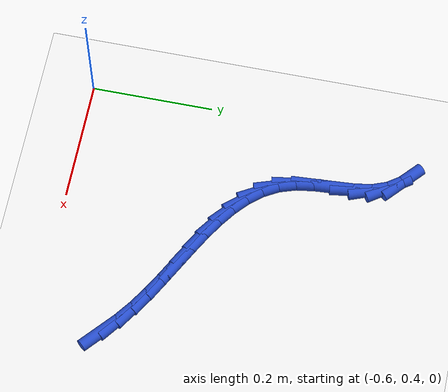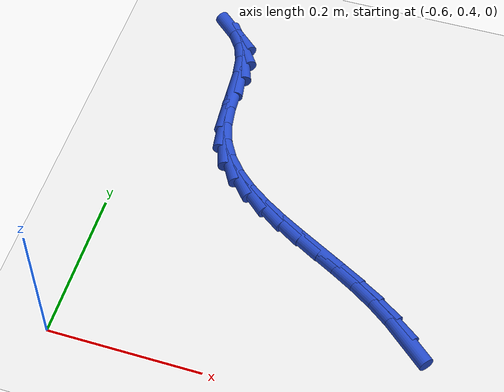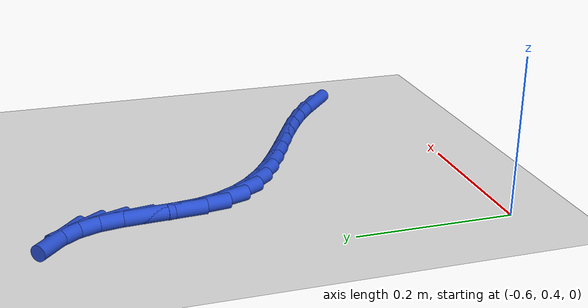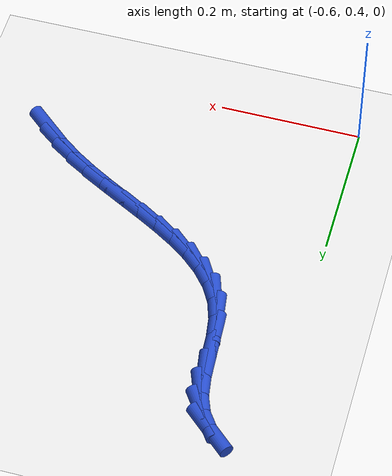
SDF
<sdf version="1.6">
 <world name="default">
  <model name="ground_plane">
   <static>1</static>
   <link name="link">
    <collision name="collision">
     <geometry><plane><normal>0 0 1</normal><size>100 100</size></plane></geometry>
     <surface><friction><ode><mu>100</mu><mu2>50</mu2></ode></friction></surface>
    </collision>
    <visual name="visual">
     <cast_shadows>0</cast_shadows>
     <geometry><plane><normal>0 0 1</normal><size>100 100</size></plane></geometry>
     <material>
      <script><uri>file://media/materials/scripts/gazebo.material</uri><name>Gazebo/WhiteGlow</name></script>
     </material>
    </visual>
   </link>
  </model>
  <model name="line">
   <link name="link_18">
    <pose>-0.17786176440382157 0.5111765119932334 0.01 0 1.57 -0.7172434040278896</pose>
    <collision name="collision">
     <geometry><cylinder><radius>0.01</radius><length>0.08</length></cylinder></geometry>
    </collision>
    <visual name="visual">
     <material>
      <script><name>Gazebo/Blue</name><uri>file://media/materials/scripts/gazebo.material</uri></script>
     </material>
     <geometry><cylinder><radius>0.01</radius><length>0.08</length></cylinder></geometry>
    </visual>
   </link>
   <link name="link_19">
    <pose>-0.2018655471341496 0.5321126724625562 0.01 0 1.57 -0.6398168012515932</pose>
    <collision name="collision">
     <geometry><cylinder><radius>0.01</radius><length>0.08</length></cylinder></geometry>
    </collision>
    <visual name="visual">
     <material>
      <script><name>Gazebo/Blue</name><uri>file://media/materials/scripts/gazebo.material</uri></script>
     </material>
     <geometry><cylinder><radius>0.01</radius><length>0.08</length></cylinder></geometry>
    </visual>
   </link>
   <link name="link_20">
    <pose>-0.22784122278215033 0.551445305621514 0.01 0 1.57 -0.5680354631291024</pose>
    <collision name="collision">
     <geometry><cylinder><radius>0.01</radius><length>0.08</length></cylinder></geometry>
    </collision>
    <visual name="visual">
     <material>
      <script><name>Gazebo/Blue</name><uri>file://media/materials/scripts/gazebo.material</uri></script>
     </material>
     <geometry><cylinder><radius>0.01</radius><length>0.08</length></cylinder></geometry>
    </visual>
   </link>
   <link name="link_21">
    <pose>-0.25566332252893403 0.5692013803997522 0.01 0 1.57 -0.5190503029865586</pose>
    <collision name="collision">
     <geometry><cylinder><radius>0.01</radius><length>0.08</length></cylinder></geometry>
    </collision>
    <visual name="visual">
     <material>
      <script><name>Gazebo/Blue</name><uri>file://media/materials/scripts/gazebo.material</uri></script>
     </material>
     <geometry><cylinder><radius>0.01</radius><length>0.08</length></cylinder></geometry>
    </visual>
   </link>
   <link name="link_22">
    <pose>-0.28471762525485333 0.585800146600227 0.01 0 1.57 -0.4934573531197224</pose>
    <collision name="collision">
     <geometry><cylinder><radius>0.01</radius><length>0.08</length></cylinder></geometry>
    </collision>
    <visual name="visual">
     <material>
      <script><name>Gazebo/Blue</name><uri>file://media/materials/scripts/gazebo.material</uri></script>
     </material>
     <geometry><cylinder><radius>0.01</radius><length>0.08</length></cylinder></geometry>
    </visual>
   </link>
   <link name="link_23">
    <pose>-0.3143166843180743 0.6017196260700308 0.01 0 1.57 -0.49017274310943765</pose>
    <collision name="collision">
     <geometry><cylinder><radius>0.01</radius><length>0.08</length></cylinder></geometry>
    </collision>
    <visual name="visual">
     <material>
      <script><name>Gazebo/Blue</name><uri>file://media/materials/scripts/gazebo.material</uri></script>
     </material>
     <geometry><cylinder><radius>0.01</radius><length>0.08</length></cylinder></geometry>
    </visual>
   </link>
   <link name="link_24">
    <pose>-0.34377305307676326 0.6174378406562568 0.01 0 1.57 -0.50953794916407</pose>
    <collision name="collision">
     <geometry><cylinder><radius>0.01</radius><length>0.08</length></cylinder></geometry>
    </collision>
    <visual name="visual">
     <material>
      <script><name>Gazebo/Blue</name><uri>file://media/materials/scripts/gazebo.material</uri></script>
     </material>
     <geometry><cylinder><radius>0.01</radius><length>0.08</length></cylinder></geometry>
    </visual>
   </link>
   <link name="link_25">
    <pose>-0.372399284889086 0.6334328122059978 0.01 0 1.57 -0.5534591542436653</pose>
    <collision name="collision">
     <geometry><cylinder><radius>0.01</radius><length>0.08</length></cylinder></geometry>
    </collision>
    <visual name="visual">
     <material>
      <script><name>Gazebo/Blue</name><uri>file://media/materials/scripts/gazebo.material</uri></script>
     </material>
     <geometry><cylinder><radius>0.01</radius><length>0.08</length></cylinder></geometry>
    </visual>
   </link>
   <link name="link_26">
    <pose>-0.3995079331132088 0.6501825625663464 0.01 0 1.57 -0.6253954329557927</pose>
    <collision name="collision">
     <geometry><cylinder><radius>0.01</radius><length>0.08</length></cylinder></geometry>
    </collision>
    <visual name="visual">
     <material>
      <script><name>Gazebo/Blue</name><uri>file://media/materials/scripts/gazebo.material</uri></script>
     </material>
     <geometry><cylinder><radius>0.01</radius><length>0.08</length></cylinder></geometry>
    </visual>
   </link>
   <link name="link_27">
    <pose>-0.42441155110729767 0.6681651135843955 0.01 0 1.57 -0.7298793365535429</pose>
    <collision name="collision">
     <geometry><cylinder><radius>0.01</radius><length>0.08</length></cylinder></geometry>
    </collision>
    <visual name="visual">
     <material>
      <script><name>Gazebo/Blue</name><uri>file://media/materials/scripts/gazebo.material</uri></script>
     </material>
     <geometry><cylinder><radius>0.01</radius><length>0.08</length></cylinder></geometry>
    </visual>
   </link>
   <link name="link_28">
    <pose>-0.44642269222951875 0.687858487107238 0.01 0 1.57 -0.8707941947156681</pose>
    <collision name="collision">
     <geometry><cylinder><radius>0.01</radius><length>0.08</length></cylinder></geometry>
    </collision>
    <visual name="visual">
     <material>
      <script><name>Gazebo/Blue</name><uri>file://media/materials/scripts/gazebo.material</uri></script>
     </material>
     <geometry><cylinder><radius>0.01</radius><length>0.08</length></cylinder></geometry>
    </visual>
   </link>
   <link name="link_29">
    <pose>-0.4648539098380381 0.7097407049819666 0.01 0 1.57 -1.0474900609404227</pose>
    <collision name="collision">
     <geometry><cylinder><radius>0.01</radius><length>0.08</length></cylinder></geometry>
    </collision>
    <visual name="visual">
     <material>
      <script><name>Gazebo/Blue</name><uri>file://media/materials/scripts/gazebo.material</uri></script>
     </material>
     <geometry><cylinder><radius>0.01</radius><length>0.08</length></cylinder></geometry>
    </visual>
   </link>
   <link name="link_30">
    <pose>-0.4790177572910219 0.7342897890556743 0.01 0 1.57 -1.2495734958967832</pose>
    <collision name="collision">
     <geometry><cylinder><radius>0.01</radius><length>0.08</length></cylinder></geometry>
    </collision>
    <visual name="visual">
     <material>
      <script><name>Gazebo/Blue</name><uri>file://media/materials/scripts/gazebo.material</uri></script>
     </material>
     <geometry><cylinder><radius>0.01</radius><length>0.08</length></cylinder></geometry>
    </visual>
   </link>
   <link name="link_31">
    <pose>-0.4882316449488693 0.7619801529859537 0.01 0 1.57 -1.4248450868572338</pose>
    <collision name="collision">
     <geometry><cylinder><radius>0.01</radius><length>0.08</length></cylinder></geometry>
    </collision>
    <visual name="visual">
     <material>
      <script><name>Gazebo/Blue</name><uri>file://media/materials/scripts/gazebo.material</uri></script>
     </material>
     <geometry><cylinder><radius>0.01</radius><length>0.08</length></cylinder></geometry>
    </visual>
   </link>
   <link name="link_32">
    <pose>-0.4927330525880847 0.792602705534363 0.01 0 1.57 -1.5072319531437228</pose>
    <collision name="collision">
     <geometry><cylinder><radius>0.01</radius><length>0.08</length></cylinder></geometry>
    </collision>
    <visual name="visual">
     <material>
      <script><name>Gazebo/Blue</name><uri>file://media/materials/scripts/gazebo.material</uri></script>
     </material>
     <geometry><cylinder><radius>0.01</radius><length>0.08</length></cylinder></geometry>
    </visual>
   </link>
   <link name="link_33">
    <pose>-0.4947608712037783 0.824461538986495 0.01 0 1.57 -1.504997722143784</pose>
    <collision name="collision">
     <geometry><cylinder><radius>0.01</radius><length>0.08</length></cylinder></geometry>
    </collision>
    <visual name="visual">
     <material>
      <script><name>Gazebo/Blue</name><uri>file://media/materials/scripts/gazebo.material</uri></script>
     </material>
     <geometry><cylinder><radius>0.01</radius><length>0.08</length></cylinder></geometry>
    </visual>
   </link>
   <link name="link_34">
    <pose>-0.4968170069856924 0.8556653558343938 0.01 0 1.57 -1.4121016413993734</pose>
    <collision name="collision">
     <geometry><cylinder><radius>0.01</radius><length>0.08</length></cylinder></geometry>
    </collision>
    <visual name="visual">
     <material>
      <script><name>Gazebo/Blue</name><uri>file://media/materials/scripts/gazebo.material</uri></script>
     </material>
     <geometry><cylinder><radius>0.01</radius><length>0.08</length></cylinder></geometry>
    </visual>
   </link>
   <link name="link_35">
    <pose>-0.5014033661235693 0.8843228585701047 0.01 0 1.57 -1.2086205495595588</pose>
    <collision name="collision">
     <geometry><cylinder><radius>0.01</radius><length>0.08</length></cylinder></geometry>
    </collision>
    <visual name="visual">
     <material>
      <script><name>Gazebo/Blue</name><uri>file://media/materials/scripts/gazebo.material</uri></script>
     </material>
     <geometry><cylinder><radius>0.01</radius><length>0.08</length></cylinder></geometry>
    </visual>
   </link>
   <link name="link_36">
    <pose>-0.5106838958073353 0.9088169224619925 0.01 0 1.57 -0.9616803801868318</pose>
    <collision name="collision">
     <geometry><cylinder><radius>0.01</radius><length>0.08</length></cylinder></geometry>
    </collision>
    <visual name="visual">
     <material>
      <script><name>Gazebo/Blue</name><uri>file://media/materials/scripts/gazebo.material</uri></script>
     </material>
     <geometry><cylinder><radius>0.01</radius><length>0.08</length></cylinder></geometry>
    </visual>
   </link>
   <link name="link_37">
    <pose>-0.5248530921392358 0.9291281605893118 0.01 0 1.57 -0.7327971053964613</pose>
    <collision name="collision">
     <geometry><cylinder><radius>0.01</radius><length>0.08</length></cylinder></geometry>
    </collision>
    <visual name="visual">
     <material>
      <script><name>Gazebo/Blue</name><uri>file://media/materials/scripts/gazebo.material</uri></script>
     </material>
     <geometry><cylinder><radius>0.01</radius><length>0.08</length></cylinder></geometry>
    </visual>
   </link>
  </model>
 </world>
</sdf>
